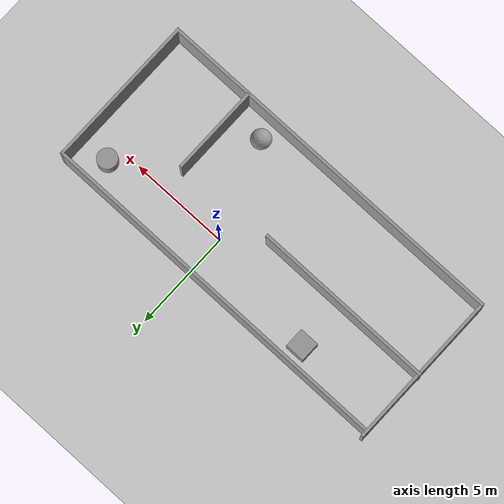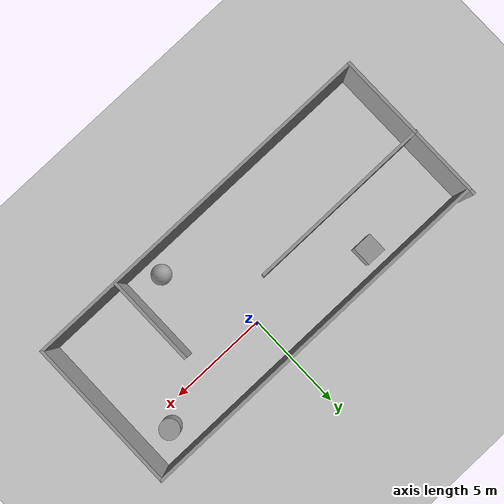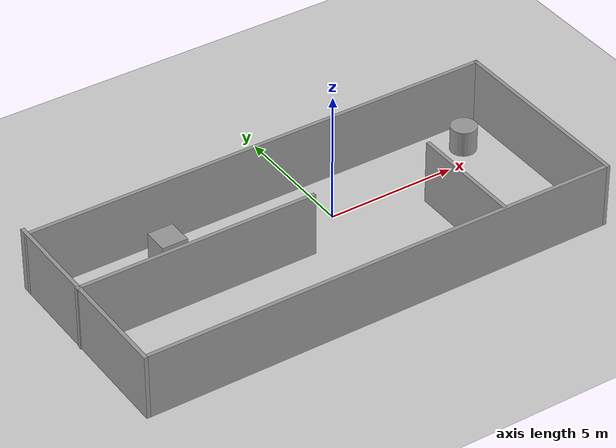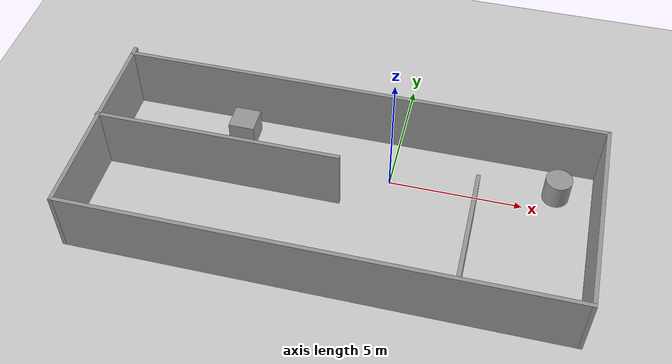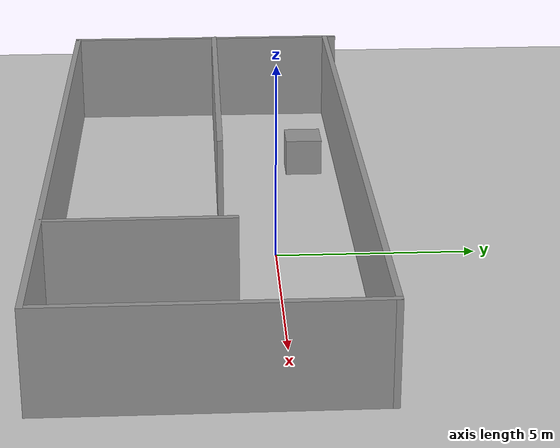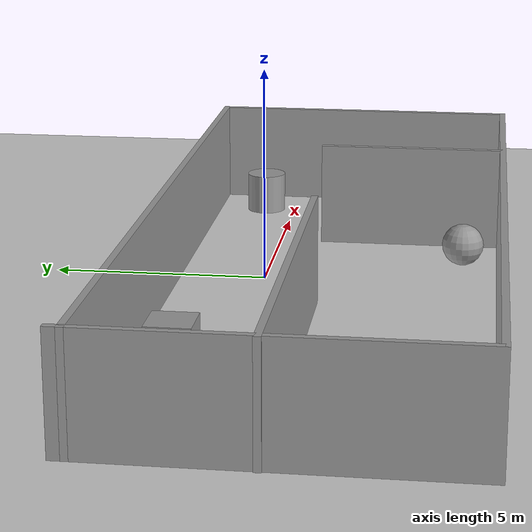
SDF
<sdf version="1.7">
 <world name="default">
  <light name="sun" type="directional">
   <pose>0 0 10 0 -0 0</pose>
   <diffuse>0.8 0.8 0.8 1</diffuse>
   <specular>0.2 0.2 0.2 1</specular>
   <attenuation>
    <range>1000</range>
    <constant>0.9</constant>
    <linear>0.01</linear>
    <quadratic>0.001</quadratic>
   </attenuation>
   <direction>-0.5 0.1 -0.9</direction>
   <spot><inner_angle>0</inner_angle><outer_angle>0</outer_angle><falloff>0</falloff></spot>
  </light>
  <model name="ground_plane">
   <static>1</static>
   <link name="link">
    <collision name="collision">
     <geometry><plane><normal>0 0 1</normal><size>100 100</size></plane></geometry>
     <surface>
      <contact><collide_bitmask>65535</collide_bitmask></contact>
      <friction><ode><mu>100</mu><mu2>50</mu2></ode></friction>
     </surface>
    </collision>
    <visual name="visual">
     <cast_shadows>0</cast_shadows>
     <geometry><plane><normal>0 0 1</normal><size>100 100</size></plane></geometry>
     <material>
      <script><uri>file://media/materials/scripts/gazebo.material</uri><name>Gazebo/Grey</name></script>
     </material>
    </visual>
   </link>
  </model>
  <gravity>0 0 -9.8</gravity>
  <magnetic_field>6e-06 2.3e-05 -4.2e-05</magnetic_field>
  <atmosphere type="adiabatic"/>
  <physics type="ode">
   <max_step_size>0.001</max_step_size>
   <real_time_factor>1</real_time_factor>
   <real_time_update_rate>1000</real_time_update_rate>
  </physics>
  <scene><ambient>0.4 0.4 0.4 1</ambient><background>0.7 0.7 0.7 1</background><shadows>1</shadows></scene>
  <spherical_coordinates>
   <surface_model>EARTH_WGS84</surface_model>
   <latitude_deg>0</latitude_deg>
   <longitude_deg>0</longitude_deg>
   <elevation>0</elevation>
   <heading_deg>0</heading_deg>
  </spherical_coordinates>
  <model name="World">
   <pose>-1.60861 0.189633 0 0 -0 0</pose>
   <link name="Wall_13">
    <collision name="Wall_13_Collision">
     <geometry><box><size>8 0.15 2.5</size></box></geometry>
     <pose>0 0 1.25 0 -0 0</pose>
    </collision>
    <visual name="Wall_13_Visual">
     <pose>0 0 1.25 0 -0 0</pose>
     <geometry><box><size>8 0.15 2.5</size></box></geometry>
     <material>
      <script><uri>file://media/materials/scripts/gazebo.material</uri><name>Gazebo/Grey</name></script>
      <ambient>1 1 1 1</ambient>
     </material>
     <meta><layer>0</layer></meta>
    </visual>
    <pose>-9.15775 -1.78466 0 0 -0 -1.5708</pose>
   </link>
   <link name="Wall_14">
    <collision name="Wall_14_Collision">
     <geometry><box><size>18.5 0.15 2.5</size></box></geometry>
     <pose>0 0 1.25 0 -0 0</pose>
    </collision>
    <visual name="Wall_14_Visual">
     <pose>0 0 1.25 0 -0 0</pose>
     <geometry><box><size>18.5 0.15 2.5</size></box></geometry>
     <material>
      <script><uri>file://media/materials/scripts/gazebo.material</uri><name>Gazebo/Grey</name></script>
      <ambient>1 1 1 1</ambient>
     </material>
     <meta><layer>0</layer></meta>
    </visual>
    <pose>0.01725 -5.70965 0 0 -0 0</pose>
   </link>
   <link name="Wall_15">
    <collision name="Wall_15_Collision">
     <geometry><box><size>7.75 0.15 2.5</size></box></geometry>
     <pose>0 0 1.25 0 -0 0</pose>
    </collision>
    <visual name="Wall_15_Visual">
     <pose>0 0 1.25 0 -0 0</pose>
     <geometry><box><size>7.75 0.15 2.5</size></box></geometry>
     <material>
      <script><uri>file://media/materials/scripts/gazebo.material</uri><name>Gazebo/Grey</name></script>
      <ambient>1 1 1 1</ambient>
     </material>
     <meta><layer>0</layer></meta>
    </visual>
    <pose>9.19225 -1.90966 0 0 -0 1.5708</pose>
   </link>
   <link name="Wall_16">
    <collision name="Wall_16_Collision">
     <geometry><box><size>18.5 0.15 2.5</size></box></geometry>
     <pose>0 0 1.25 0 -0 0</pose>
    </collision>
    <visual name="Wall_16_Visual">
     <pose>0 0 1.25 0 -0 0</pose>
     <geometry><box><size>18.5 0.15 2.5</size></box></geometry>
     <material>
      <script><uri>file://media/materials/scripts/gazebo.material</uri><name>Gazebo/Grey</name></script>
      <ambient>1 1 1 1</ambient>
     </material>
     <meta><layer>0</layer></meta>
    </visual>
    <pose>0.01725 1.89035 0 0 -0 3.14159</pose>
   </link>
   <link name="Wall_18">
    <collision name="Wall_18_Collision">
     <geometry><box><size>9.25 0.15 2.5</size></box></geometry>
     <pose>0 0 1.25 0 -0 0</pose>
    </collision>
    <visual name="Wall_18_Visual">
     <pose>0 0 1.25 0 -0 0</pose>
     <geometry><box><size>9.25 0.15 2.5</size></box></geometry>
     <material>
      <script><uri>file://media/materials/scripts/gazebo.material</uri><name>Gazebo/Grey</name></script>
      <ambient>1 1 1 1</ambient>
     </material>
     <meta><layer>0</layer></meta>
    </visual>
    <pose>-4.64225 -1.53965 0 0 -0 0</pose>
   </link>
   <link name="Wall_20">
    <collision name="Wall_20_Collision">
     <geometry><box><size>4.5 0.15 2.5</size></box></geometry>
     <pose>0 0 1.25 0 -0 0</pose>
    </collision>
    <visual name="Wall_20_Visual">
     <pose>0 0 1.25 0 -0 0</pose>
     <geometry><box><size>4.5 0.15 2.5</size></box></geometry>
     <material>
      <script><uri>file://media/materials/scripts/gazebo.material</uri><name>Gazebo/Grey</name></script>
      <ambient>1 1 1 1</ambient>
     </material>
     <meta><layer>0</layer></meta>
    </visual>
    <pose>4.88375 -3.45865 0 0 -0 1.5708</pose>
   </link>
   <static>1</static>
  </model>
  <model name="unit_box">
   <pose>-6.0011 1.07911 0.499995 0 1e-05 0</pose>
   <link name="link">
    <inertial>
     <mass>1</mass>
     <inertia>
      <ixx>0.166667</ixx>
      <ixy>0</ixy>
      <ixz>0</ixz>
      <iyy>0.166667</iyy>
      <iyz>0</iyz>
      <izz>0.166667</izz>
     </inertia>
    </inertial>
    <collision name="collision"><geometry><box><size>1 1 1</size></box></geometry></collision>
    <visual name="visual">
     <geometry><box><size>1 1 1</size></box></geometry>
     <material>
      <script><name>Gazebo/Grey</name><uri>file://media/materials/scripts/gazebo.material</uri></script>
     </material>
    </visual>
   </link>
  </model>
  <model name="unit_sphere">
   <pose>1.7058 -4.62068 0.5 0 -0 0</pose>
   <link name="link">
    <inertial>
     <mass>1</mass>
     <inertia><ixx>0.1</ixx><ixy>0</ixy><ixz>0</ixz><iyy>0.1</iyy><iyz>0</iyz><izz>0.1</izz></inertia>
    </inertial>
    <collision name="collision"><geometry><sphere><radius>0.5</radius></sphere></geometry></collision>
    <visual name="visual">
     <geometry><sphere><radius>0.5</radius></sphere></geometry>
     <material>
      <script><name>Gazebo/Grey</name><uri>file://media/materials/scripts/gazebo.material</uri></script>
     </material>
    </visual>
   </link>
  </model>
  <model name="unit_cylinder">
   <pose>6.16625 0.785155 0.499997 3e-06 4e-06 -0</pose>
   <link name="link">
    <inertial>
     <mass>1</mass>
     <inertia><ixx>0.145833</ixx><ixy>0</ixy><ixz>0</ixz><iyy>0.145833</iyy><iyz>0</iyz><izz>0.125</izz></inertia>
    </inertial>
    <collision name="collision">
     <geometry><cylinder><radius>0.5</radius><length>1</length></cylinder></geometry>
    </collision>
    <visual name="visual">
     <geometry><cylinder><radius>0.5</radius><length>1</length></cylinder></geometry>
     <material>
      <script><name>Gazebo/Grey</name><uri>file://media/materials/scripts/gazebo.material</uri></script>
     </material>
    </visual>
   </link>
  </model>
 </world>
</sdf>
